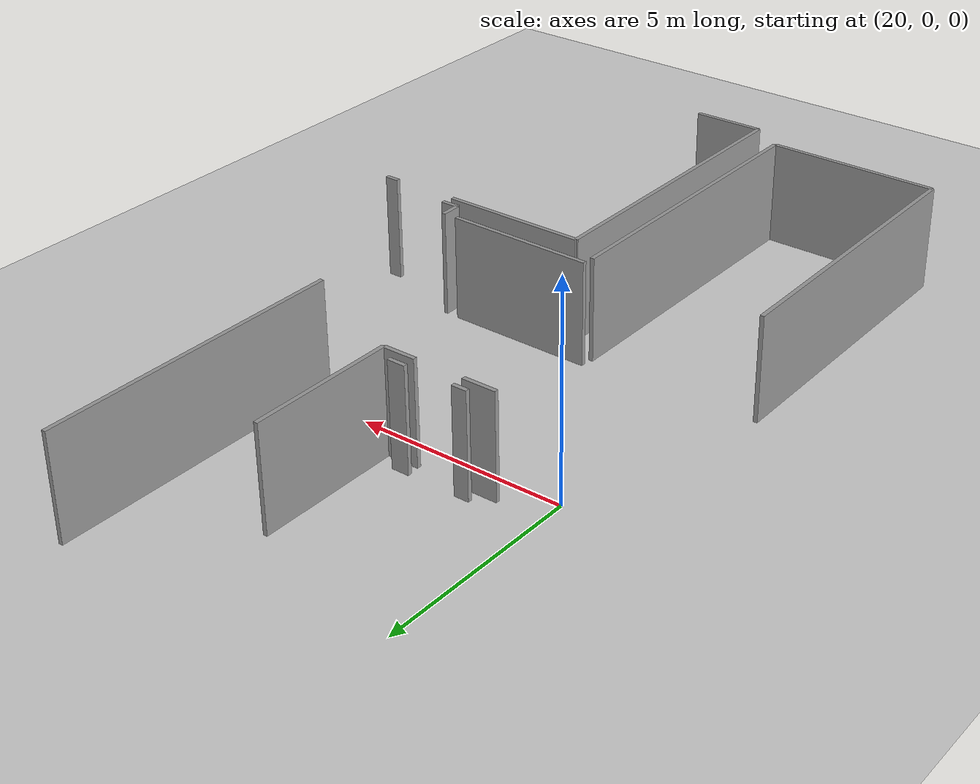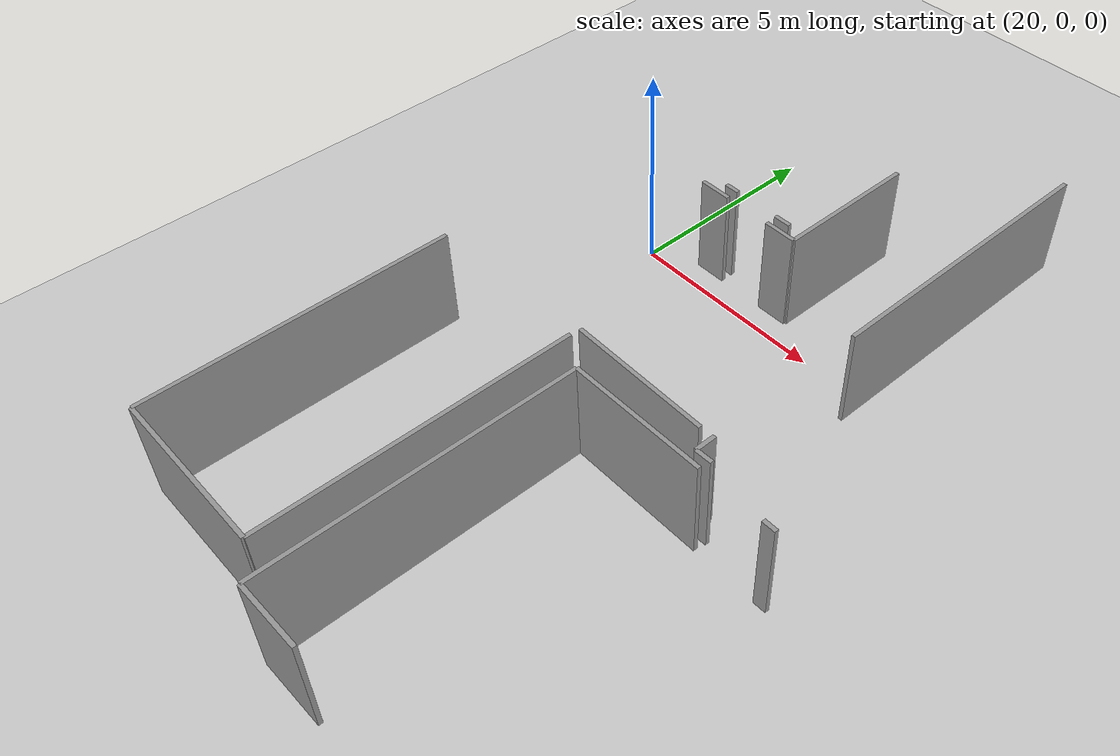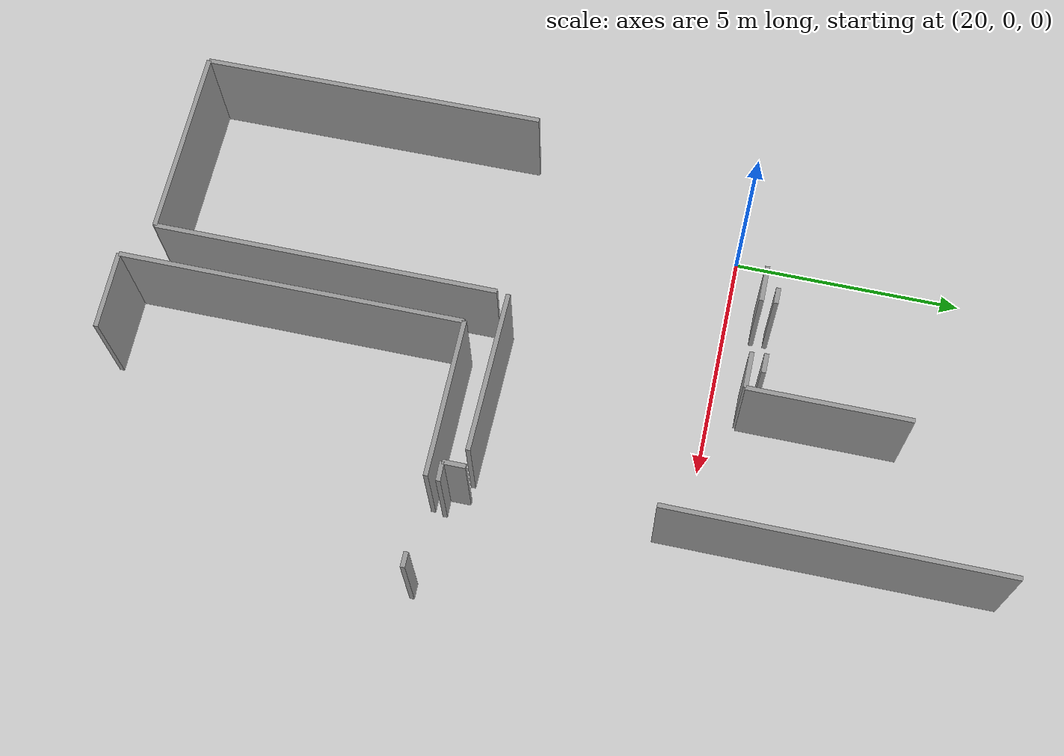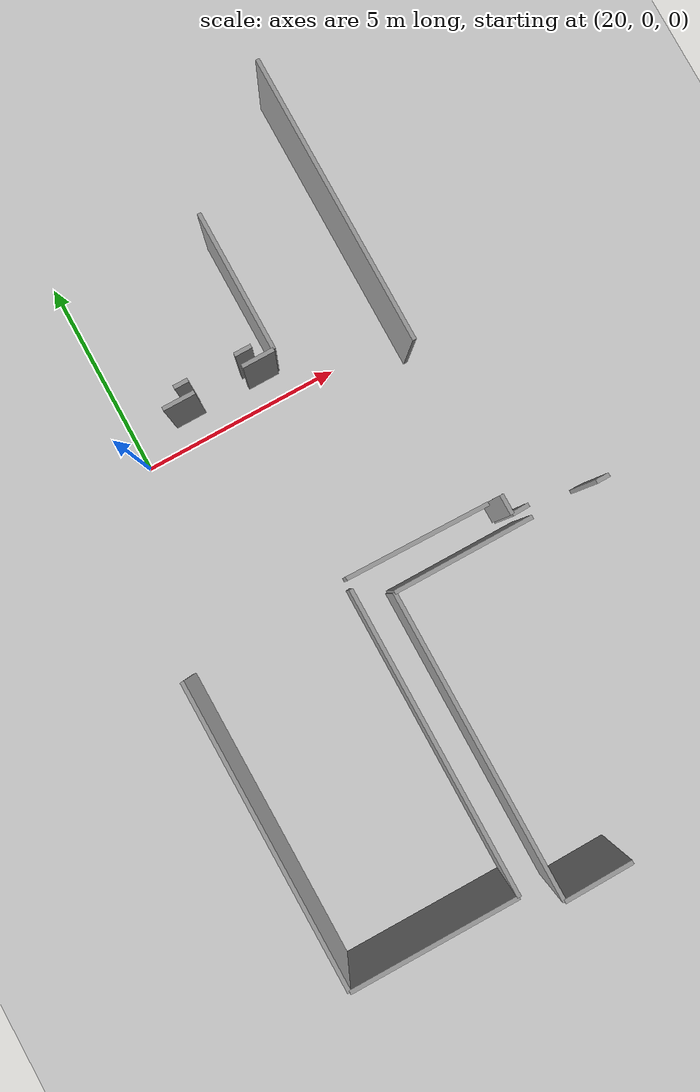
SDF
<sdf version="1.6">
 <world name="default">
  <model name="ground_plane">
   <static>1</static>
   <link name="link">
    <collision name="collision">
     <geometry><plane><normal>0 0 1</normal><size>100 100</size></plane></geometry>
     <surface><friction><ode><mu>100</mu><mu2>50</mu2></ode></friction></surface>
    </collision>
    <visual name="visual">
     <cast_shadows>0</cast_shadows>
     <geometry><plane><normal>0 0 1</normal><size>100 100</size></plane></geometry>
     <material>
      <script><uri>file://media/materials/scripts/gazebo.material</uri><name>Gazebo/Grey</name></script>
     </material>
    </visual>
   </link>
  </model>
  <model name="0510030966_A-40">
   <static>1</static>
   <link name="Wall_193">
    <collision name="Wall_193_Collision">
     <geometry><box><size>4.12787522386 0.1 2.5</size></box></geometry>
     <pose>2.06393761193 0 1.25 0 0 0</pose>
    </collision>
    <visual name="Wall_193_Visual">
     <pose>2.06393761193 0 1.25 0 0 0</pose>
     <geometry><box><size>4.12787522386 0.1 2.5</size></box></geometry>
     <material>
      <script><uri>file://media/materials/scripts/gazebo.material</uri><name>Gazebo/Grey</name></script>
      <ambient>1 1 1 1</ambient>
     </material>
    </visual>
    <pose>57.599735816 -25.1647974801 0 0 0 0.0</pose>
   </link>
   <link name="Wall_194">
    <collision name="Wall_194_Collision">
     <geometry><box><size>7.46243633546 0.1 2.5</size></box></geometry>
     <pose>3.73121816773 0 1.25 0 0 0</pose>
    </collision>
    <visual name="Wall_194_Visual">
     <pose>3.73121816773 0 1.25 0 0 0</pose>
     <geometry><box><size>7.46243633546 0.1 2.5</size></box></geometry>
     <material>
      <script><uri>file://media/materials/scripts/gazebo.material</uri><name>Gazebo/Grey</name></script>
      <ambient>1 1 1 1</ambient>
     </material>
    </visual>
    <pose>61.7276110398 -25.1647974801 0 0 0 1.57079632679</pose>
   </link>
   <link name="Wall_195">
    <collision name="Wall_195_Collision">
     <geometry><box><size>7.46253754366 0.1 2.5</size></box></geometry>
     <pose>3.73126877183 0 1.25 0 0 0</pose>
    </collision>
    <visual name="Wall_195_Visual">
     <pose>3.73126877183 0 1.25 0 0 0</pose>
     <geometry><box><size>7.46253754366 0.1 2.5</size></box></geometry>
     <material>
      <script><uri>file://media/materials/scripts/gazebo.material</uri><name>Gazebo/Grey</name></script>
      <ambient>1 1 1 1</ambient>
     </material>
    </visual>
    <pose>57.5608702831 -17.7023611446 0 0 0 -1.56558821784</pose>
   </link>
   <link name="Wall_196">
    <collision name="Wall_196_Collision">
     <geometry><box><size>7.4899978408 0.1 2.5</size></box></geometry>
     <pose>3.7449989204 0 1.25 0 0 0</pose>
    </collision>
    <visual name="Wall_196_Visual">
     <pose>3.7449989204 0 1.25 0 0 0</pose>
     <geometry><box><size>7.4899978408 0.1 2.5</size></box></geometry>
     <material>
      <script><uri>file://media/materials/scripts/gazebo.material</uri><name>Gazebo/Grey</name></script>
      <ambient>1 1 1 1</ambient>
     </material>
    </visual>
    <pose>62.5277837755 -25.7109471251 0 0 0 1.57079632679</pose>
   </link>
   <link name="Wall_197">
    <collision name="Wall_197_Collision">
     <geometry><box><size>3.44112379815 0.1 2.5</size></box></geometry>
     <pose>1.72056189908 0 1.25 0 0 0</pose>
    </collision>
    <visual name="Wall_197_Visual">
     <pose>1.72056189908 0 1.25 0 0 0</pose>
     <geometry><box><size>3.44112379815 0.1 2.5</size></box></geometry>
     <material>
      <script><uri>file://media/materials/scripts/gazebo.material</uri><name>Gazebo/Grey</name></script>
      <ambient>1 1 1 1</ambient>
     </material>
    </visual>
    <pose>62.5277837755 -18.2209492843 0 0 0 0.0</pose>
   </link>
   <link name="Wall_198">
    <collision name="Wall_198_Collision">
     <geometry><box><size>0.326419671548 0.1 2.5</size></box></geometry>
     <pose>0.163209835774 0 1.25 0 0 0</pose>
    </collision>
    <visual name="Wall_198_Visual">
     <pose>0.163209835774 0 1.25 0 0 0</pose>
     <geometry><box><size>0.326419671548 0.1 2.5</size></box></geometry>
     <material>
      <script><uri>file://media/materials/scripts/gazebo.material</uri><name>Gazebo/Grey</name></script>
      <ambient>1 1 1 1</ambient>
     </material>
    </visual>
    <pose>67.5728093684 -18.2209492843 0 0 0 0.0</pose>
   </link>
   <link name="Wall_201">
    <collision name="Wall_201_Collision">
     <geometry><box><size>1.69261756613 0.1 2.5</size></box></geometry>
     <pose>0.846308783063 0 1.25 0 0 0</pose>
    </collision>
    <visual name="Wall_201_Visual">
     <pose>0.846308783063 0 1.25 0 0 0</pose>
     <geometry><box><size>1.69261756613 0.1 2.5</size></box></geometry>
     <material>
      <script><uri>file://media/materials/scripts/gazebo.material</uri><name>Gazebo/Grey</name></script>
      <ambient>1 1 1 1</ambient>
     </material>
    </visual>
    <pose>64.2202126173 -25.6856718276 0 0 0 -3.12665942977</pose>
   </link>
   <link name="Wall_212">
    <collision name="Wall_212_Collision">
     <geometry><box><size>0.797124458613 0.1 2.5</size></box></geometry>
     <pose>0.398562229307 0 1.25 0 0 0</pose>
    </collision>
    <visual name="Wall_212_Visual">
     <pose>0.398562229307 0 1.25 0 0 0</pose>
     <geometry><box><size>0.797124458613 0.1 2.5</size></box></geometry>
     <material>
      <script><uri>file://media/materials/scripts/gazebo.material</uri><name>Gazebo/Grey</name></script>
      <ambient>1 1 1 1</ambient>
     </material>
    </visual>
    <pose>59.9953005728 -12.2568681493 0 0 0 0.0</pose>
   </link>
   <link name="Wall_213">
    <collision name="Wall_213_Collision">
     <geometry><box><size>0.801696874246 0.1 2.5</size></box></geometry>
     <pose>0.400848437123 0 1.25 0 0 0</pose>
    </collision>
    <visual name="Wall_213_Visual">
     <pose>0.400848437123 0 1.25 0 0 0</pose>
     <geometry><box><size>0.801696874246 0.1 2.5</size></box></geometry>
     <material>
      <script><uri>file://media/materials/scripts/gazebo.material</uri><name>Gazebo/Grey</name></script>
      <ambient>1 1 1 1</ambient>
     </material>
    </visual>
    <pose>61.978712865 -12.2568681493 0 0 0 0.0</pose>
   </link>
   <link name="Wall_214">
    <collision name="Wall_214_Collision">
     <geometry><box><size>3.4972629012 0.1 2.5</size></box></geometry>
     <pose>1.7486314506 0 1.25 0 0 0</pose>
    </collision>
    <visual name="Wall_214_Visual">
     <pose>1.7486314506 0 1.25 0 0 0</pose>
     <geometry><box><size>3.4972629012 0.1 2.5</size></box></geometry>
     <material>
      <script><uri>file://media/materials/scripts/gazebo.material</uri><name>Gazebo/Grey</name></script>
      <ambient>1 1 1 1</ambient>
     </material>
    </visual>
    <pose>62.7804097392 -12.2568681493 0 0 0 1.57079632679</pose>
   </link>
   <link name="Wall_219">
    <collision name="Wall_219_Collision">
     <geometry><box><size>3.52011426253 0.1 2.5</size></box></geometry>
     <pose>1.76005713127 0 1.25 0 0 0</pose>
    </collision>
    <visual name="Wall_219_Visual">
     <pose>1.76005713127 0 1.25 0 0 0</pose>
     <geometry><box><size>3.52011426253 0.1 2.5</size></box></geometry>
     <material>
      <script><uri>file://media/materials/scripts/gazebo.material</uri><name>Gazebo/Grey</name></script>
      <ambient>1 1 1 1</ambient>
     </material>
    </visual>
    <pose>65.2689469473 -17.5101926765 0 0 0 3.12708731997</pose>
   </link>
   <link name="Wall_230">
    <collision name="Wall_230_Collision">
     <geometry><box><size>0.493693876773 0.1 2.5</size></box></geometry>
     <pose>0.246846938387 0 1.25 0 0 0</pose>
    </collision>
    <visual name="Wall_230_Visual">
     <pose>0.246846938387 0 1.25 0 0 0</pose>
     <geometry><box><size>0.493693876773 0.1 2.5</size></box></geometry>
     <material>
      <script><uri>file://media/materials/scripts/gazebo.material</uri><name>Gazebo/Grey</name></script>
      <ambient>1 1 1 1</ambient>
     </material>
    </visual>
    <pose>65.6099729465 -17.9636238934 0 0 0 1.57079632679</pose>
   </link>
   <link name="Wall_231">
    <collision name="Wall_231_Collision">
     <geometry><box><size>7.29643224569 0.1 2.5</size></box></geometry>
     <pose>3.64821612285 0 1.25 0 0 0</pose>
    </collision>
    <visual name="Wall_231_Visual">
     <pose>3.64821612285 0 1.25 0 0 0</pose>
     <geometry><box><size>7.29643224569 0.1 2.5</size></box></geometry>
     <material>
      <script><uri>file://media/materials/scripts/gazebo.material</uri><name>Gazebo/Grey</name></script>
      <ambient>1 1 1 1</ambient>
     </material>
    </visual>
    <pose>65.6099729465 -13.55962557 0 0 0 1.57079632679</pose>
   </link>
   <link name="Wall_243">
    <collision name="Wall_243_Collision">
     <geometry><box><size>0.416768911989 0.1 2.5</size></box></geometry>
     <pose>0.208384455995 0 1.25 0 0 0</pose>
    </collision>
    <visual name="Wall_243_Visual">
     <pose>0.208384455995 0 1.25 0 0 0</pose>
     <geometry><box><size>0.416768911989 0.1 2.5</size></box></geometry>
     <material>
      <script><uri>file://media/materials/scripts/gazebo.material</uri><name>Gazebo/Grey</name></script>
      <ambient>1 1 1 1</ambient>
     </material>
    </visual>
    <pose>66.0265708153 -17.9516848081 0 0 0 -3.112941959</pose>
   </link>
   <link name="Wall_244">
    <collision name="Wall_244_Collision">
     <geometry><box><size>0.358299569431 0.1 2.5</size></box></geometry>
     <pose>0.179149784715 0 1.25 0 0 0</pose>
    </collision>
    <visual name="Wall_244_Visual">
     <pose>0.179149784715 0 1.25 0 0 0</pose>
     <geometry><box><size>0.358299569431 0.1 2.5</size></box></geometry>
     <material>
      <script><uri>file://media/materials/scripts/gazebo.material</uri><name>Gazebo/Grey</name></script>
      <ambient>1 1 1 1</ambient>
     </material>
    </visual>
    <pose>60.4370467275 -11.9496272211 0 0 0 0.0</pose>
   </link>
   <link name="Wall_245">
    <collision name="Wall_245_Collision">
     <geometry><box><size>0.425869711557 0.1 2.5</size></box></geometry>
     <pose>0.212934855778 0 1.25 0 0 0</pose>
    </collision>
    <visual name="Wall_245_Visual">
     <pose>0.212934855778 0 1.25 0 0 0</pose>
     <geometry><box><size>0.425869711557 0.1 2.5</size></box></geometry>
     <material>
      <script><uri>file://media/materials/scripts/gazebo.material</uri><name>Gazebo/Grey</name></script>
      <ambient>1 1 1 1</ambient>
     </material>
    </visual>
    <pose>61.9536915906 -11.9496272211 0 0 0 0.0</pose>
   </link>
   <pose>-38.95 12.877458626 0 0 0 0</pose>
  </model>
 </world>
</sdf>
